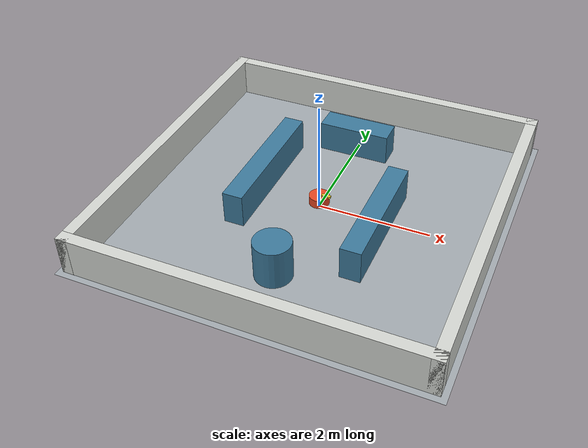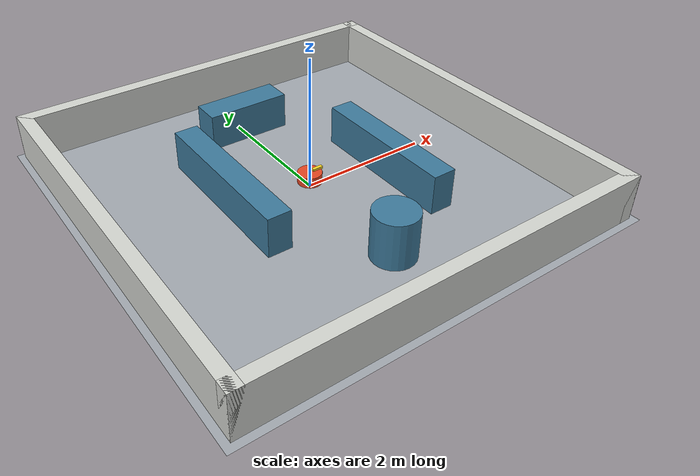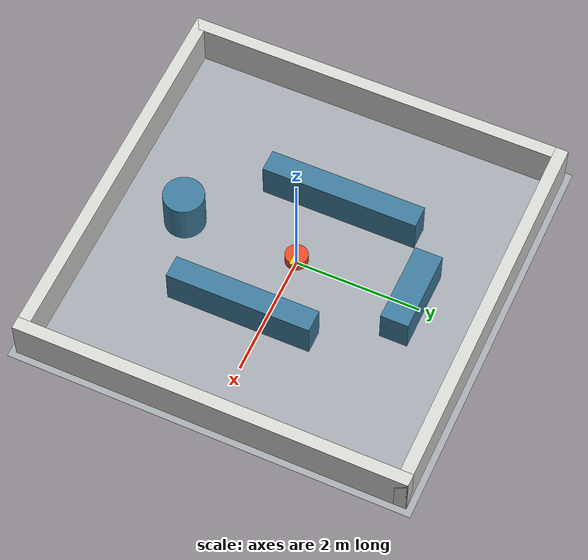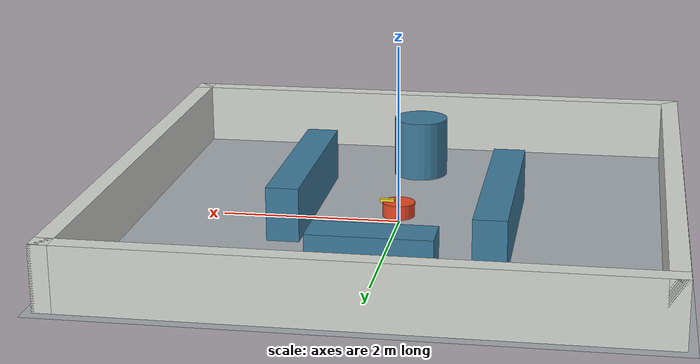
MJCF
<mujoco model="mobile_slam_warehouse">
  <compiler angle="radian"/>
  <option timestep="0.002" gravity="0 0 -9.81" integrator="implicitfast"/>

  <visual>
    <global azimuth="90" elevation="-90" offwidth="512" offheight="512"/>
    <quality shadowsize="2048"/>
    <map znear="0.01" zfar="20"/>
  </visual>

  <asset>
    <texture name="floor_tex" type="2d" builtin="checker"
      rgb1="0.70 0.72 0.74" rgb2="0.58 0.61 0.64" width="256" height="256"/>
    <material name="floor_mat" texture="floor_tex" texrepeat="12 12" reflectance="0.05"/>
    <material name="wall_mat" rgba="0.83 0.84 0.82 1"/>
    <material name="obstacle_mat" rgba="0.24 0.48 0.61 1"/>
    <material name="robot_mat" rgba="0.90 0.28 0.14 1"/>
  </asset>

  <default>
    <geom friction="0.9 0.02 0.002" condim="4"/>
    <joint damping="2"/>
  </default>

  <worldbody>
    <light pos="0 0 6" dir="0 0 -1" diffuse="0.9 0.9 0.9"/>
    <geom name="floor" type="plane" size="3.2 3.2 0.1" material="floor_mat"/>

    <geom name="wall_north" type="box" pos="0 3.0 0.35"
      size="3.1 0.10 0.35" material="wall_mat"/>
    <geom name="wall_south" type="box" pos="0 -3.0 0.35"
      size="3.1 0.10 0.35" material="wall_mat"/>
    <geom name="wall_east" type="box" pos="3.0 0 0.35"
      size="0.10 3.1 0.35" material="wall_mat"/>
    <geom name="wall_west" type="box" pos="-3.0 0 0.35"
      size="0.10 3.1 0.35" material="wall_mat"/>

    <geom name="shelf_west" type="box" pos="-1.15 0.25 0.30"
      size="0.18 1.25 0.30" material="obstacle_mat"/>
    <geom name="shelf_east" type="box" pos="1.15 -0.35 0.30"
      size="0.18 1.15 0.30" material="obstacle_mat"/>
    <geom name="island" type="box" pos="0 1.85 0.28"
      size="0.65 0.22 0.28" material="obstacle_mat"/>
    <geom name="column" type="cylinder" pos="0 -1.85 0.35"
      size="0.32 0.35" material="obstacle_mat"/>

    <camera name="overhead" pos="0 0 8" xyaxes="1 0 0 0 1 0"/>

    <body name="mobile_base" pos="0 0 0.08">
      <joint name="base_x" type="slide" axis="1 0 0" range="-2.75 2.75"/>
      <joint name="base_y" type="slide" axis="0 1 0" range="-2.75 2.75"/>
      <joint name="base_yaw" type="hinge" axis="0 0 1" limited="false"/>
      <geom name="base_collision" type="cylinder" pos="0 0 0.08"
        size="0.18 0.08" mass="4.0" material="robot_mat"/>
      <geom name="heading_marker" type="box" pos="0.13 0 0.17"
        size="0.08 0.025 0.02" mass="0.05" rgba="0.98 0.85 0.15 1"
        contype="0" conaffinity="0"/>
      <site name="lidar" pos="0 0 0.23" size="0.015" rgba="0.1 0.9 0.9 1"/>
    </body>
  </worldbody>

  <actuator>
    <velocity name="x_velocity" joint="base_x" kv="55"
      ctrlrange="-0.8 0.8" forcerange="-80 80"/>
    <velocity name="y_velocity" joint="base_y" kv="55"
      ctrlrange="-0.8 0.8" forcerange="-80 80"/>
    <velocity name="yaw_velocity" joint="base_yaw" kv="22"
      ctrlrange="-1.5 1.5" forcerange="-25 25"/>
  </actuator>
</mujoco>
